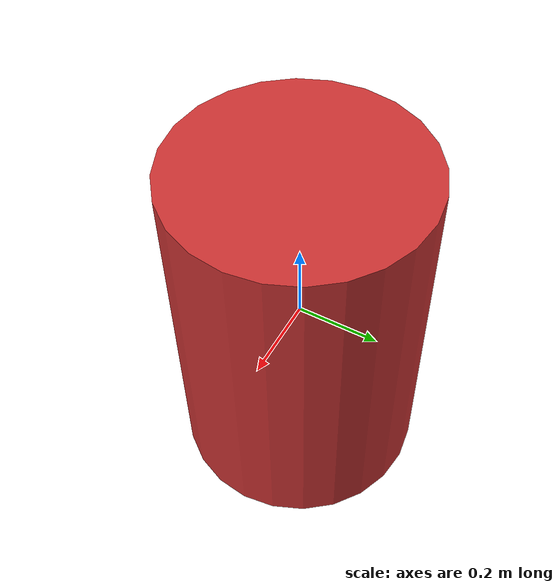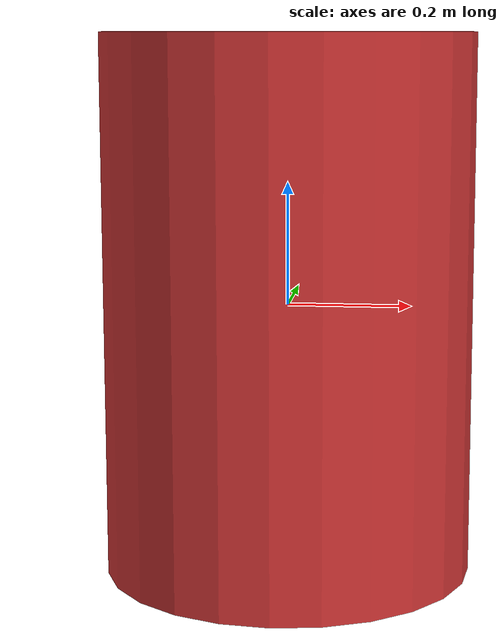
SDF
<?xml version="1.0" ?>
<sdf version="1.7">
    <model name="oil_barrel">
        <static>true</static>
        <link name="link">
            <visual name="visual">
                <geometry>
                    <cylinder>
                        <radius>0.3</radius>
                        <length>0.88</length>
                    </cylinder>
                </geometry>
                <material>
                    <ambient>0.8 0.2 0.2 1</ambient>
                    <diffuse>0.8 0.2 0.2 1</diffuse>
                </material>
            </visual>
            <collision name="collision">
                <geometry>
                    <cylinder>
                        <radius>0.3</radius>
                        <length>0.88</length>
                    </cylinder>
                </geometry>
            </collision>
        </link>
    </model>
</sdf>
